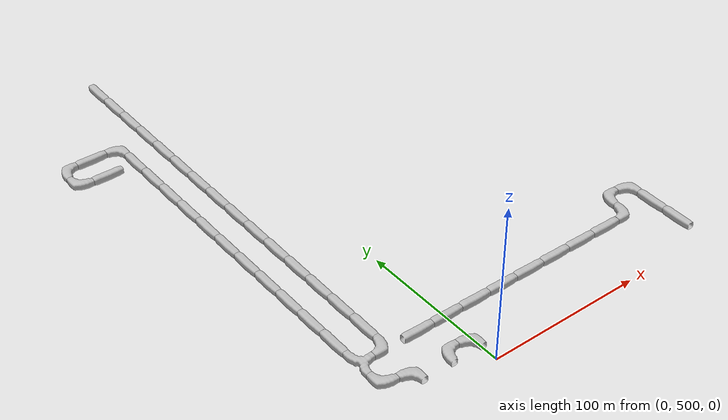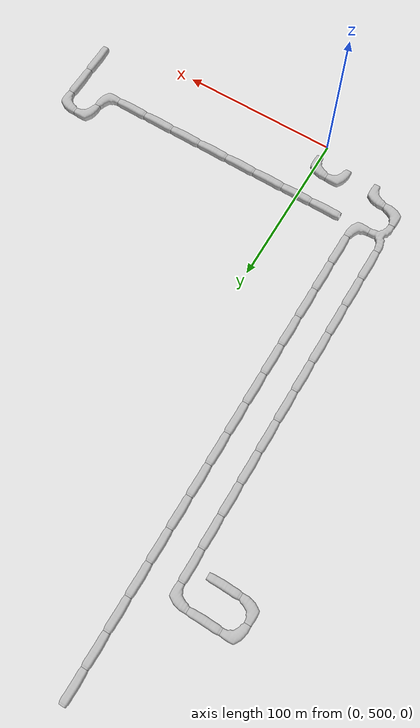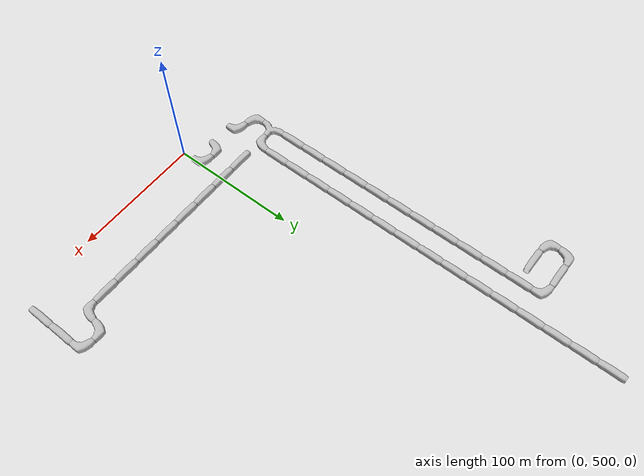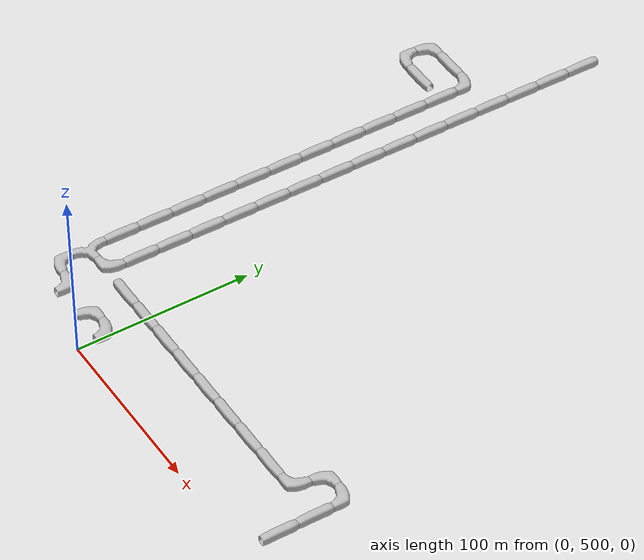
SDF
<sdf version="1.6">
 <world name="cave_4000_4">
  <include>
   <static>true</static>
   <name>cave_8_26</name>
   <pose>160 520 0 0 0 0.0</pose>
   <uri>model://cave_straight_20m</uri>
  </include>
  <include>
   <static>true</static>
   <name>cave_8_27</name>
   <pose>160 540 0 0 0 0.0</pose>
   <uri>model://cave_straight_20m</uri>
  </include>
  <include>
   <static>true</static>
   <name>cave_8_28</name>
   <pose>160 560 0 0 0 3.141592653589793</pose>
   <uri>model://cave_L_20m</uri>
  </include>
  <include>
   <static>true</static>
   <name>cave_7_28</name>
   <pose>140 560 0 0 0 -1.5707963267948966</pose>
   <uri>model://cave_L_20m</uri>
  </include>
  <include>
   <static>true</static>
   <name>cave_7_27</name>
   <pose>140 540 0 0 0 1.5707963267948966</pose>
   <uri>model://cave_L_20m</uri>
  </include>
  <include>
   <static>true</static>
   <name>cave_6_27</name>
   <pose>120 540 0 0 0 1.5707963267948966</pose>
   <uri>model://cave_straight_20m</uri>
  </include>
  <include>
   <static>true</static>
   <name>cave_5_27</name>
   <pose>100 540 0 0 0 1.5707963267948966</pose>
   <uri>model://cave_straight_20m</uri>
  </include>
  <include>
   <static>true</static>
   <name>cave_4_27</name>
   <pose>80 540 0 0 0 1.5707963267948966</pose>
   <uri>model://cave_straight_20m</uri>
  </include>
  <include>
   <static>true</static>
   <name>cave_3_27</name>
   <pose>60 540 0 0 0 1.5707963267948966</pose>
   <uri>model://cave_straight_20m</uri>
  </include>
  <include>
   <static>true</static>
   <name>cave_2_27</name>
   <pose>40 540 0 0 0 1.5707963267948966</pose>
   <uri>model://cave_straight_20m</uri>
  </include>
  <include>
   <static>true</static>
   <name>cave_1_27</name>
   <pose>20 540 0 0 0 1.5707963267948966</pose>
   <uri>model://cave_straight_20m</uri>
  </include>
  <include>
   <static>true</static>
   <name>cave_0_27</name>
   <pose>0 540 0 0 0 1.5707963267948966</pose>
   <uri>model://cave_straight_20m</uri>
  </include>
  <include>
   <static>true</static>
   <name>cave_-1_27</name>
   <pose>-20 540 0 0 0 1.5707963267948966</pose>
   <uri>model://cave_straight_20m</uri>
  </include>
  <include>
   <static>true</static>
   <name>cave_0_26</name>
   <pose>0 520 0 0 0 3.141592653589793</pose>
   <uri>model://cave_L_20m</uri>
  </include>
  <include>
   <static>true</static>
   <name>cave_-1_26</name>
   <pose>-20 520 0 0 0 -1.5707963267948966</pose>
   <uri>model://cave_L_20m</uri>
  </include>
  <include>
   <static>true</static>
   <name>cave_-2_26</name>
   <pose>-40 520 0 0 0 3.141592653589793</pose>
   <uri>model://cave_L_20m</uri>
  </include>
  <include>
   <static>true</static>
   <name>cave_-3_26</name>
   <pose>-60 520 0 0 0 0.0</pose>
   <uri>model://cave_L_20m</uri>
  </include>
  <include>
   <static>true</static>
   <name>cave_-3_27</name>
   <pose>-60 540 0 0 0 -1.5707963267948966</pose>
   <uri>model://cave_3way_20m</uri>
  </include>
  <include>
   <static>true</static>
   <name>cave_-2_27</name>
   <pose>-40 540 0 0 0 1.5707963267948966</pose>
   <uri>model://cave_L_20m</uri>
  </include>
  <include>
   <static>true</static>
   <name>cave_-2_28</name>
   <pose>-40 560 0 0 0 0.0</pose>
   <uri>model://cave_straight_20m</uri>
  </include>
  <include>
   <static>true</static>
   <name>cave_-2_29</name>
   <pose>-40 580 0 0 0 0.0</pose>
   <uri>model://cave_straight_20m</uri>
  </include>
  <include>
   <static>true</static>
   <name>cave_-2_30</name>
   <pose>-40 600 0 0 0 0.0</pose>
   <uri>model://cave_straight_20m</uri>
  </include>
  <include>
   <static>true</static>
   <name>cave_-2_31</name>
   <pose>-40 620 0 0 0 0.0</pose>
   <uri>model://cave_straight_20m</uri>
  </include>
  <include>
   <static>true</static>
   <name>cave_-2_32</name>
   <pose>-40 640 0 0 0 0.0</pose>
   <uri>model://cave_straight_20m</uri>
  </include>
  <include>
   <static>true</static>
   <name>cave_-2_33</name>
   <pose>-40 660 0 0 0 0.0</pose>
   <uri>model://cave_straight_20m</uri>
  </include>
  <include>
   <static>true</static>
   <name>cave_-2_34</name>
   <pose>-40 680 0 0 0 0.0</pose>
   <uri>model://cave_straight_20m</uri>
  </include>
  <include>
   <static>true</static>
   <name>cave_-2_35</name>
   <pose>-40 700 0 0 0 0.0</pose>
   <uri>model://cave_straight_20m</uri>
  </include>
  <include>
   <static>true</static>
   <name>cave_-2_36</name>
   <pose>-40 720 0 0 0 0.0</pose>
   <uri>model://cave_straight_20m</uri>
  </include>
  <include>
   <static>true</static>
   <name>cave_-2_37</name>
   <pose>-40 740 0 0 0 0.0</pose>
   <uri>model://cave_straight_20m</uri>
  </include>
  <include>
   <static>true</static>
   <name>cave_-2_38</name>
   <pose>-40 760 0 0 0 0.0</pose>
   <uri>model://cave_straight_20m</uri>
  </include>
  <include>
   <static>true</static>
   <name>cave_-2_39</name>
   <pose>-40 780 0 0 0 0.0</pose>
   <uri>model://cave_straight_20m</uri>
  </include>
  <include>
   <static>true</static>
   <name>cave_-2_40</name>
   <pose>-40 800 0 0 0 0.0</pose>
   <uri>model://cave_straight_20m</uri>
  </include>
  <include>
   <static>true</static>
   <name>cave_-2_41</name>
   <pose>-40 820 0 0 0 0.0</pose>
   <uri>model://cave_straight_20m</uri>
  </include>
  <include>
   <static>true</static>
   <name>cave_-2_42</name>
   <pose>-40 840 0 0 0 0.0</pose>
   <uri>model://cave_straight_20m</uri>
  </include>
  <include>
   <static>true</static>
   <name>cave_-3_28</name>
   <pose>-60 560 0 0 0 0.0</pose>
   <uri>model://cave_straight_20m</uri>
  </include>
  <include>
   <static>true</static>
   <name>cave_-3_29</name>
   <pose>-60 580 0 0 0 0.0</pose>
   <uri>model://cave_straight_20m</uri>
  </include>
  <include>
   <static>true</static>
   <name>cave_-3_30</name>
   <pose>-60 600 0 0 0 0.0</pose>
   <uri>model://cave_straight_20m</uri>
  </include>
  <include>
   <static>true</static>
   <name>cave_-3_31</name>
   <pose>-60 620 0 0 0 0.0</pose>
   <uri>model://cave_straight_20m</uri>
  </include>
  <include>
   <static>true</static>
   <name>cave_-3_32</name>
   <pose>-60 640 0 0 0 0.0</pose>
   <uri>model://cave_straight_20m</uri>
  </include>
  <include>
   <static>true</static>
   <name>cave_-3_33</name>
   <pose>-60 660 0 0 0 0.0</pose>
   <uri>model://cave_straight_20m</uri>
  </include>
  <include>
   <static>true</static>
   <name>cave_-3_34</name>
   <pose>-60 680 0 0 0 0.0</pose>
   <uri>model://cave_straight_20m</uri>
  </include>
  <include>
   <static>true</static>
   <name>cave_-3_35</name>
   <pose>-60 700 0 0 0 0.0</pose>
   <uri>model://cave_straight_20m</uri>
  </include>
  <include>
   <static>true</static>
   <name>cave_-3_36</name>
   <pose>-60 720 0 0 0 0.0</pose>
   <uri>model://cave_straight_20m</uri>
  </include>
  <include>
   <static>true</static>
   <name>cave_-3_37</name>
   <pose>-60 740 0 0 0 0.0</pose>
   <uri>model://cave_straight_20m</uri>
  </include>
  <include>
   <static>true</static>
   <name>cave_-3_38</name>
   <pose>-60 760 0 0 0 0.0</pose>
   <uri>model://cave_straight_20m</uri>
  </include>
  <include>
   <static>true</static>
   <name>cave_-3_39</name>
   <pose>-60 780 0 0 0 3.141592653589793</pose>
   <uri>model://cave_L_20m</uri>
  </include>
  <include>
   <static>true</static>
   <name>cave_-4_39</name>
   <pose>-80 780 0 0 0 1.5707963267948966</pose>
   <uri>model://cave_straight_20m</uri>
  </include>
  <include>
   <static>true</static>
   <name>cave_-5_39</name>
   <pose>-100 780 0 0 0 -1.5707963267948966</pose>
   <uri>model://cave_L_20m</uri>
  </include>
  <include>
   <static>true</static>
   <name>cave_-5_38</name>
   <pose>-100 760 0 0 0 0.0</pose>
   <uri>model://cave_L_20m</uri>
  </include>
  <include>
   <static>true</static>
   <name>cave_-4_38</name>
   <pose>-80 760 0 0 0 1.5707963267948966</pose>
   <uri>model://cave_straight_20m</uri>
  </include>
 </world>
</sdf>
